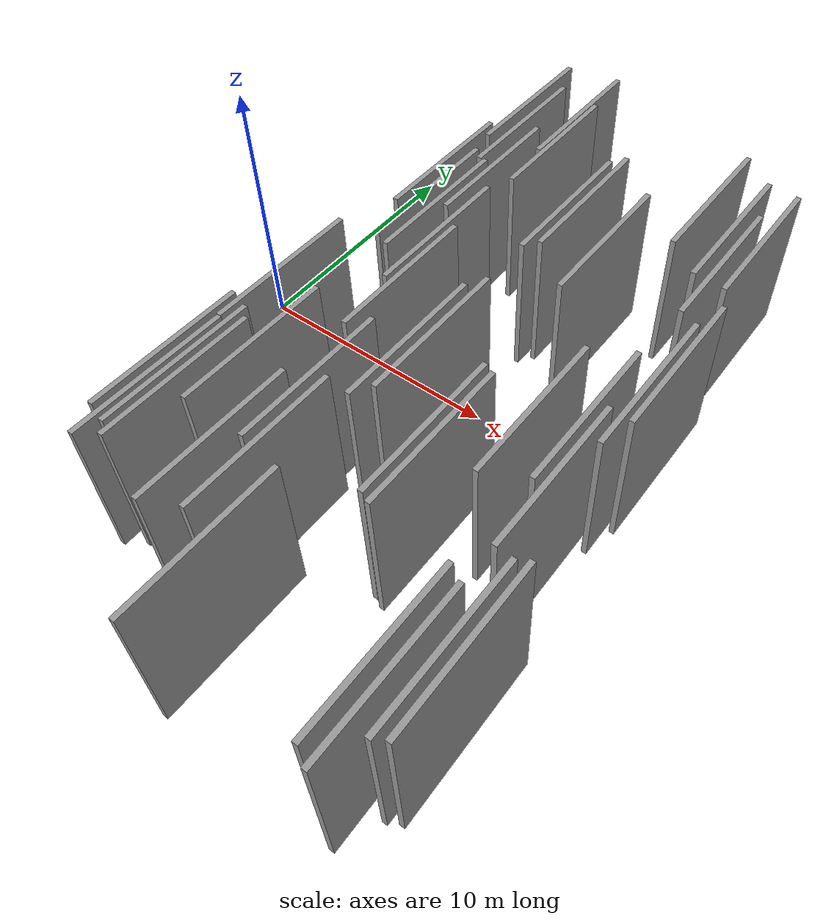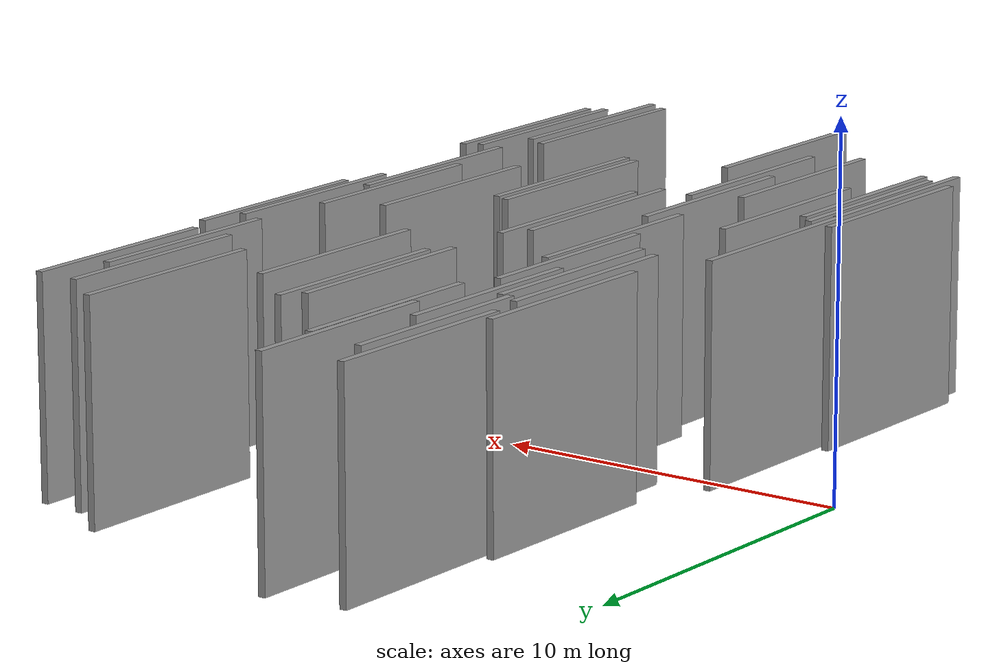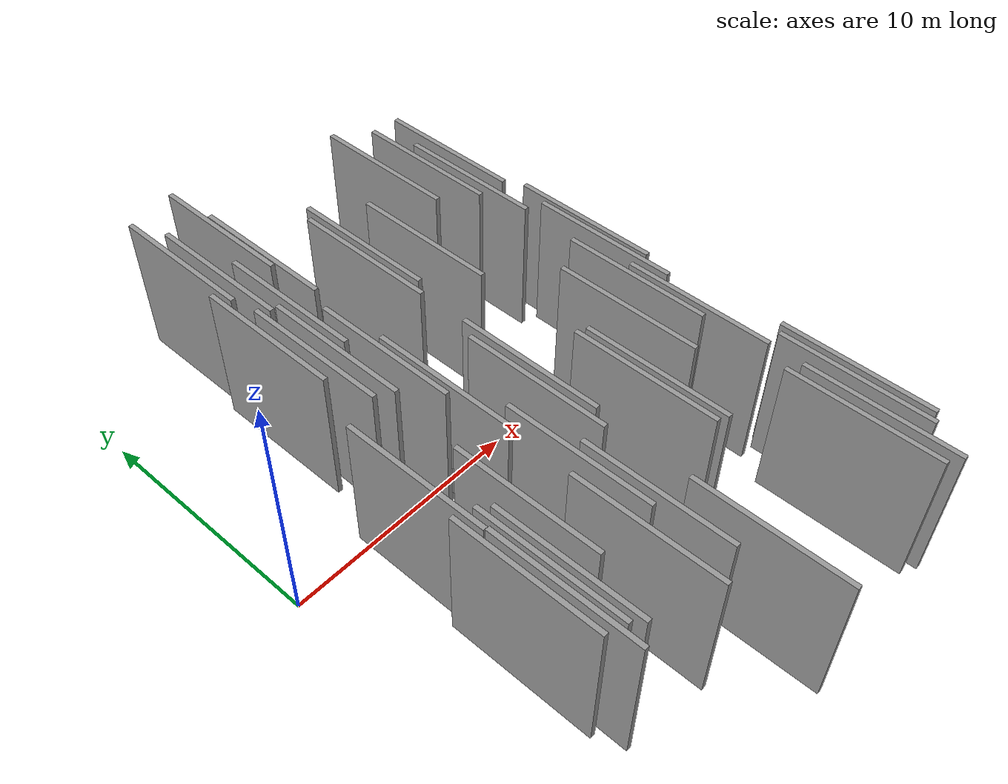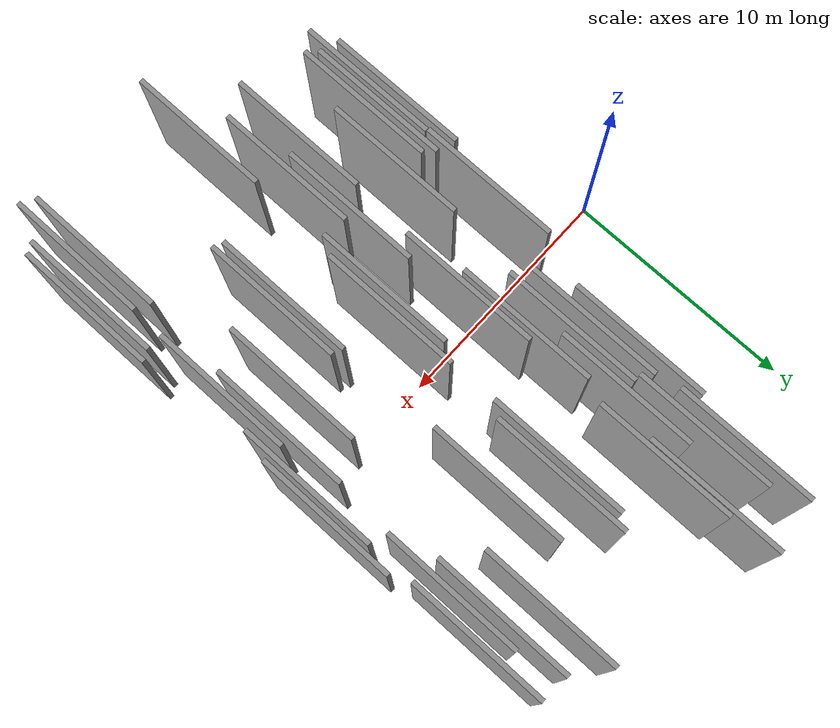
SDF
<sdf version="1.6">
 <world name="default">
  <scene>
   <sky><clouds><speed>12</speed></clouds></sky>
   <ambient>0.4 0.4 0.4 1</ambient>
   <background>0.7 0.7 0.7 1</background>
   <shadows>1</shadows>
  </scene>
  <gravity>0 0 -9.8066</gravity>
  <magnetic_field>6e-06 2.3e-05 -4.2e-05</magnetic_field>
  <physics default="0" name="default_physics" type="ode">
   <ode>
    <solver>
     <type>quick</type>
     <iters>10</iters>
     <sor>1.0</sor>
     <use_dynamic_moi_rescaling>0</use_dynamic_moi_rescaling>
    </solver>
    <constraints>
     <cfm>0</cfm>
     <erp>0.2</erp>
     <contact_max_correcting_vel>100</contact_max_correcting_vel>
     <contact_surface_layer>0.001</contact_surface_layer>
    </constraints>
   </ode>
   <max_step_size>0.004</max_step_size>
   <real_time_factor>1</real_time_factor>
   <real_time_update_rate>250</real_time_update_rate>
  </physics>
  <light name="sun" type="directional">
   <pose>0 0 10 0 0 0</pose>
   <diffuse>0.8 0.8 0.8 1</diffuse>
   <specular>0.2 0.2 0.2 1</specular>
   <attenuation>
    <range>1000</range>
    <constant>0.9</constant>
    <linear>0.01</linear>
    <quadratic>0.001</quadratic>
   </attenuation>
   <direction>-0.5 0.1 -0.9</direction>
  </light>
  <model name="grey_wall_1">
   <static>1</static>
   <pose>12.1451 -5.1813 0.0 0.000000 0.000000 1.570796</pose>
   <link name="link">
    <pose>0 0 3.00 0 0 0</pose>
    <collision name="collision"><geometry><box><size>6.00 0.2 6.00</size></box></geometry></collision>
    <visual name="visual">
     <cast_shadows>0</cast_shadows>
     <geometry><box><size>6.00 0.2 6.00</size></box></geometry>
     <material>
      <script>
       <uri>model://grey_wall/materials/scripts</uri>
       <uri>model://grey_wall/materials/textures</uri>
       <name>vrc/grey_wall</name>
      </script>
     </material>
    </visual>
   </link>
  </model>
  <model name="grey_wall_2">
   <static>1</static>
   <pose>15.1413 -11.2766 0.0 0.000000 0.000000 1.570796</pose>
   <link name="link">
    <pose>0 0 3.00 0 0 0</pose>
    <collision name="collision"><geometry><box><size>6.00 0.2 6.00</size></box></geometry></collision>
    <visual name="visual">
     <cast_shadows>0</cast_shadows>
     <geometry><box><size>6.00 0.2 6.00</size></box></geometry>
     <material>
      <script>
       <uri>model://grey_wall/materials/scripts</uri>
       <uri>model://grey_wall/materials/textures</uri>
       <name>vrc/grey_wall</name>
      </script>
     </material>
    </visual>
   </link>
  </model>
  <model name="grey_wall_3">
   <static>1</static>
   <pose>13.6531 9.5082 0.0 0.000000 0.000000 1.570796</pose>
   <link name="link">
    <pose>0 0 3.00 0 0 0</pose>
    <collision name="collision"><geometry><box><size>6.00 0.2 6.00</size></box></geometry></collision>
    <visual name="visual">
     <cast_shadows>0</cast_shadows>
     <geometry><box><size>6.00 0.2 6.00</size></box></geometry>
     <material>
      <script>
       <uri>model://grey_wall/materials/scripts</uri>
       <uri>model://grey_wall/materials/textures</uri>
       <name>vrc/grey_wall</name>
      </script>
     </material>
    </visual>
   </link>
  </model>
  <model name="grey_wall_4">
   <static>1</static>
   <pose>11.6642 5.2979 0.0 0.000000 0.000000 1.570796</pose>
   <link name="link">
    <pose>0 0 3.00 0 0 0</pose>
    <collision name="collision"><geometry><box><size>6.00 0.2 6.00</size></box></geometry></collision>
    <visual name="visual">
     <cast_shadows>0</cast_shadows>
     <geometry><box><size>6.00 0.2 6.00</size></box></geometry>
     <material>
      <script>
       <uri>model://grey_wall/materials/scripts</uri>
       <uri>model://grey_wall/materials/textures</uri>
       <name>vrc/grey_wall</name>
      </script>
     </material>
    </visual>
   </link>
  </model>
  <model name="grey_wall_5">
   <static>1</static>
   <pose>9.4939 6.2133 0.0 0.000000 0.000000 1.570796</pose>
   <link name="link">
    <pose>0 0 3.00 0 0 0</pose>
    <collision name="collision"><geometry><box><size>6.00 0.2 6.00</size></box></geometry></collision>
    <visual name="visual">
     <cast_shadows>0</cast_shadows>
     <geometry><box><size>6.00 0.2 6.00</size></box></geometry>
     <material>
      <script>
       <uri>model://grey_wall/materials/scripts</uri>
       <uri>model://grey_wall/materials/textures</uri>
       <name>vrc/grey_wall</name>
      </script>
     </material>
    </visual>
   </link>
  </model>
  <model name="grey_wall_6">
   <static>1</static>
   <pose>3.1000 -7.3563 0.0 0.000000 0.000000 1.570796</pose>
   <link name="link">
    <pose>0 0 3.00 0 0 0</pose>
    <collision name="collision"><geometry><box><size>6.00 0.2 6.00</size></box></geometry></collision>
    <visual name="visual">
     <cast_shadows>0</cast_shadows>
     <geometry><box><size>6.00 0.2 6.00</size></box></geometry>
     <material>
      <script>
       <uri>model://grey_wall/materials/scripts</uri>
       <uri>model://grey_wall/materials/textures</uri>
       <name>vrc/grey_wall</name>
      </script>
     </material>
    </visual>
   </link>
  </model>
  <model name="grey_wall_7">
   <static>1</static>
   <pose>4.2803 -7.9696 0.0 0.000000 0.000000 1.570796</pose>
   <link name="link">
    <pose>0 0 3.00 0 0 0</pose>
    <collision name="collision"><geometry><box><size>6.00 0.2 6.00</size></box></geometry></collision>
    <visual name="visual">
     <cast_shadows>0</cast_shadows>
     <geometry><box><size>6.00 0.2 6.00</size></box></geometry>
     <material>
      <script>
       <uri>model://grey_wall/materials/scripts</uri>
       <uri>model://grey_wall/materials/textures</uri>
       <name>vrc/grey_wall</name>
      </script>
     </material>
    </visual>
   </link>
  </model>
  <model name="grey_wall_8">
   <static>1</static>
   <pose>16.1915 8.3864 0.0 0.000000 0.000000 1.570796</pose>
   <link name="link">
    <pose>0 0 3.00 0 0 0</pose>
    <collision name="collision"><geometry><box><size>6.00 0.2 6.00</size></box></geometry></collision>
    <visual name="visual">
     <cast_shadows>0</cast_shadows>
     <geometry><box><size>6.00 0.2 6.00</size></box></geometry>
     <material>
      <script>
       <uri>model://grey_wall/materials/scripts</uri>
       <uri>model://grey_wall/materials/textures</uri>
       <name>vrc/grey_wall</name>
      </script>
     </material>
    </visual>
   </link>
  </model>
  <model name="grey_wall_9">
   <static>1</static>
   <pose>4.9220 3.8574 0.0 0.000000 0.000000 1.570796</pose>
   <link name="link">
    <pose>0 0 3.00 0 0 0</pose>
    <collision name="collision"><geometry><box><size>6.00 0.2 6.00</size></box></geometry></collision>
    <visual name="visual">
     <cast_shadows>0</cast_shadows>
     <geometry><box><size>6.00 0.2 6.00</size></box></geometry>
     <material>
      <script>
       <uri>model://grey_wall/materials/scripts</uri>
       <uri>model://grey_wall/materials/textures</uri>
       <name>vrc/grey_wall</name>
      </script>
     </material>
    </visual>
   </link>
  </model>
  <model name="grey_wall_10">
   <static>1</static>
   <pose>3.5389 -8.4441 0.0 0.000000 0.000000 1.570796</pose>
   <link name="link">
    <pose>0 0 3.00 0 0 0</pose>
    <collision name="collision"><geometry><box><size>6.00 0.2 6.00</size></box></geometry></collision>
    <visual name="visual">
     <cast_shadows>0</cast_shadows>
     <geometry><box><size>6.00 0.2 6.00</size></box></geometry>
     <material>
      <script>
       <uri>model://grey_wall/materials/scripts</uri>
       <uri>model://grey_wall/materials/textures</uri>
       <name>vrc/grey_wall</name>
      </script>
     </material>
    </visual>
   </link>
  </model>
  <model name="grey_wall_11">
   <static>1</static>
   <pose>5.5867 3.4887 0.0 0.000000 0.000000 1.570796</pose>
   <link name="link">
    <pose>0 0 3.00 0 0 0</pose>
    <collision name="collision"><geometry><box><size>6.00 0.2 6.00</size></box></geometry></collision>
    <visual name="visual">
     <cast_shadows>0</cast_shadows>
     <geometry><box><size>6.00 0.2 6.00</size></box></geometry>
     <material>
      <script>
       <uri>model://grey_wall/materials/scripts</uri>
       <uri>model://grey_wall/materials/textures</uri>
       <name>vrc/grey_wall</name>
      </script>
     </material>
    </visual>
   </link>
  </model>
  <model name="grey_wall_12">
   <static>1</static>
   <pose>14.9917 8.4810 0.0 0.000000 0.000000 1.570796</pose>
   <link name="link">
    <pose>0 0 3.00 0 0 0</pose>
    <collision name="collision"><geometry><box><size>6.00 0.2 6.00</size></box></geometry></collision>
    <visual name="visual">
     <cast_shadows>0</cast_shadows>
     <geometry><box><size>6.00 0.2 6.00</size></box></geometry>
     <material>
      <script>
       <uri>model://grey_wall/materials/scripts</uri>
       <uri>model://grey_wall/materials/textures</uri>
       <name>vrc/grey_wall</name>
      </script>
     </material>
    </visual>
   </link>
  </model>
  <model name="grey_wall_13">
   <static>1</static>
   <pose>9.9165 6.7411 0.0 0.000000 0.000000 1.570796</pose>
   <link name="link">
    <pose>0 0 3.00 0 0 0</pose>
    <collision name="collision"><geometry><box><size>6.00 0.2 6.00</size></box></geometry></collision>
    <visual name="visual">
     <cast_shadows>0</cast_shadows>
     <geometry><box><size>6.00 0.2 6.00</size></box></geometry>
     <material>
      <script>
       <uri>model://grey_wall/materials/scripts</uri>
       <uri>model://grey_wall/materials/textures</uri>
       <name>vrc/grey_wall</name>
      </script>
     </material>
    </visual>
   </link>
  </model>
  <model name="grey_wall_14">
   <static>1</static>
   <pose>6.8452 11.2171 0.0 0.000000 0.000000 1.570796</pose>
   <link name="link">
    <pose>0 0 3.00 0 0 0</pose>
    <collision name="collision"><geometry><box><size>6.00 0.2 6.00</size></box></geometry></collision>
    <visual name="visual">
     <cast_shadows>0</cast_shadows>
     <geometry><box><size>6.00 0.2 6.00</size></box></geometry>
     <material>
      <script>
       <uri>model://grey_wall/materials/scripts</uri>
       <uri>model://grey_wall/materials/textures</uri>
       <name>vrc/grey_wall</name>
      </script>
     </material>
    </visual>
   </link>
  </model>
  <model name="grey_wall_15">
   <static>1</static>
   <pose>16.8674 -9.9732 0.0 0.000000 0.000000 1.570796</pose>
   <link name="link">
    <pose>0 0 3.00 0 0 0</pose>
    <collision name="collision"><geometry><box><size>6.00 0.2 6.00</size></box></geometry></collision>
    <visual name="visual">
     <cast_shadows>0</cast_shadows>
     <geometry><box><size>6.00 0.2 6.00</size></box></geometry>
     <material>
      <script>
       <uri>model://grey_wall/materials/scripts</uri>
       <uri>model://grey_wall/materials/textures</uri>
       <name>vrc/grey_wall</name>
      </script>
     </material>
    </visual>
   </link>
  </model>
  <model name="grey_wall_16">
   <static>1</static>
   <pose>7.6171 -5.5608 0.0 0.000000 0.000000 1.570796</pose>
   <link name="link">
    <pose>0 0 3.00 0 0 0</pose>
    <collision name="collision"><geometry><box><size>6.00 0.2 6.00</size></box></geometry></collision>
    <visual name="visual">
     <cast_shadows>0</cast_shadows>
     <geometry><box><size>6.00 0.2 6.00</size></box></geometry>
     <material>
      <script>
       <uri>model://grey_wall/materials/scripts</uri>
       <uri>model://grey_wall/materials/textures</uri>
       <name>vrc/grey_wall</name>
      </script>
     </material>
    </visual>
   </link>
  </model>
  <model name="grey_wall_17">
   <static>1</static>
   <pose>6.0229 6.4085 0.0 0.000000 0.000000 1.570796</pose>
   <link name="link">
    <pose>0 0 3.00 0 0 0</pose>
    <collision name="collision"><geometry><box><size>6.00 0.2 6.00</size></box></geometry></collision>
    <visual name="visual">
     <cast_shadows>0</cast_shadows>
     <geometry><box><size>6.00 0.2 6.00</size></box></geometry>
     <material>
      <script>
       <uri>model://grey_wall/materials/scripts</uri>
       <uri>model://grey_wall/materials/textures</uri>
       <name>vrc/grey_wall</name>
      </script>
     </material>
    </visual>
   </link>
  </model>
  <model name="grey_wall_18">
   <static>1</static>
   <pose>8.1108 -8.3036 0.0 0.000000 0.000000 1.570796</pose>
   <link name="link">
    <pose>0 0 3.00 0 0 0</pose>
    <collision name="collision"><geometry><box><size>6.00 0.2 6.00</size></box></geometry></collision>
    <visual name="visual">
     <cast_shadows>0</cast_shadows>
     <geometry><box><size>6.00 0.2 6.00</size></box></geometry>
     <material>
      <script>
       <uri>model://grey_wall/materials/scripts</uri>
       <uri>model://grey_wall/materials/textures</uri>
       <name>vrc/grey_wall</name>
      </script>
     </material>
    </visual>
   </link>
  </model>
  <model name="grey_wall_19">
   <static>1</static>
   <pose>5.3103 9.4407 0.0 0.000000 0.000000 1.570796</pose>
   <link name="link">
    <pose>0 0 3.00 0 0 0</pose>
    <collision name="collision"><geometry><box><size>6.00 0.2 6.00</size></box></geometry></collision>
    <visual name="visual">
     <cast_shadows>0</cast_shadows>
     <geometry><box><size>6.00 0.2 6.00</size></box></geometry>
     <material>
      <script>
       <uri>model://grey_wall/materials/scripts</uri>
       <uri>model://grey_wall/materials/textures</uri>
       <name>vrc/grey_wall</name>
      </script>
     </material>
    </visual>
   </link>
  </model>
  <model name="grey_wall_20">
   <static>1</static>
   <pose>16.2411 0.4192 0.0 0.000000 0.000000 1.570796</pose>
   <link name="link">
    <pose>0 0 3.00 0 0 0</pose>
    <collision name="collision"><geometry><box><size>6.00 0.2 6.00</size></box></geometry></collision>
    <visual name="visual">
     <cast_shadows>0</cast_shadows>
     <geometry><box><size>6.00 0.2 6.00</size></box></geometry>
     <material>
      <script>
       <uri>model://grey_wall/materials/scripts</uri>
       <uri>model://grey_wall/materials/textures</uri>
       <name>vrc/grey_wall</name>
      </script>
     </material>
    </visual>
   </link>
  </model>
  <model name="grey_wall_21">
   <static>1</static>
   <pose>4.7092 10.8443 0.0 0.000000 0.000000 1.570796</pose>
   <link name="link">
    <pose>0 0 3.00 0 0 0</pose>
    <collision name="collision"><geometry><box><size>6.00 0.2 6.00</size></box></geometry></collision>
    <visual name="visual">
     <cast_shadows>0</cast_shadows>
     <geometry><box><size>6.00 0.2 6.00</size></box></geometry>
     <material>
      <script>
       <uri>model://grey_wall/materials/scripts</uri>
       <uri>model://grey_wall/materials/textures</uri>
       <name>vrc/grey_wall</name>
      </script>
     </material>
    </visual>
   </link>
  </model>
  <model name="grey_wall_22">
   <static>1</static>
   <pose>15.5327 6.6128 0.0 0.000000 0.000000 1.570796</pose>
   <link name="link">
    <pose>0 0 3.00 0 0 0</pose>
    <collision name="collision"><geometry><box><size>6.00 0.2 6.00</size></box></geometry></collision>
    <visual name="visual">
     <cast_shadows>0</cast_shadows>
     <geometry><box><size>6.00 0.2 6.00</size></box></geometry>
     <material>
      <script>
       <uri>model://grey_wall/materials/scripts</uri>
       <uri>model://grey_wall/materials/textures</uri>
       <name>vrc/grey_wall</name>
      </script>
     </material>
    </visual>
   </link>
  </model>
  <model name="grey_wall_23">
   <static>1</static>
   <pose>15.7235 -11.5997 0.0 0.000000 0.000000 1.570796</pose>
   <link name="link">
    <pose>0 0 3.00 0 0 0</pose>
    <collision name="collision"><geometry><box><size>6.00 0.2 6.00</size></box></geometry></collision>
    <visual name="visual">
     <cast_shadows>0</cast_shadows>
     <geometry><box><size>6.00 0.2 6.00</size></box></geometry>
     <material>
      <script>
       <uri>model://grey_wall/materials/scripts</uri>
       <uri>model://grey_wall/materials/textures</uri>
       <name>vrc/grey_wall</name>
      </script>
     </material>
    </visual>
   </link>
  </model>
  <model name="grey_wall_24">
   <static>1</static>
   <pose>16.4300 -10.1939 0.0 0.000000 0.000000 1.570796</pose>
   <link name="link">
    <pose>0 0 3.00 0 0 0</pose>
    <collision name="collision"><geometry><box><size>6.00 0.2 6.00</size></box></geometry></collision>
    <visual name="visual">
     <cast_shadows>0</cast_shadows>
     <geometry><box><size>6.00 0.2 6.00</size></box></geometry>
     <material>
      <script>
       <uri>model://grey_wall/materials/scripts</uri>
       <uri>model://grey_wall/materials/textures</uri>
       <name>vrc/grey_wall</name>
      </script>
     </material>
    </visual>
   </link>
  </model>
  <model name="grey_wall_25">
   <static>1</static>
   <pose>6.9919 -0.2852 0.0 0.000000 0.000000 1.570796</pose>
   <link name="link">
    <pose>0 0 3.00 0 0 0</pose>
    <collision name="collision"><geometry><box><size>6.00 0.2 6.00</size></box></geometry></collision>
    <visual name="visual">
     <cast_shadows>0</cast_shadows>
     <geometry><box><size>6.00 0.2 6.00</size></box></geometry>
     <material>
      <script>
       <uri>model://grey_wall/materials/scripts</uri>
       <uri>model://grey_wall/materials/textures</uri>
       <name>vrc/grey_wall</name>
      </script>
     </material>
    </visual>
   </link>
  </model>
  <model name="grey_wall_26">
   <static>1</static>
   <pose>16.5880 1.6347 0.0 0.000000 0.000000 1.570796</pose>
   <link name="link">
    <pose>0 0 3.00 0 0 0</pose>
    <collision name="collision"><geometry><box><size>6.00 0.2 6.00</size></box></geometry></collision>
    <visual name="visual">
     <cast_shadows>0</cast_shadows>
     <geometry><box><size>6.00 0.2 6.00</size></box></geometry>
     <material>
      <script>
       <uri>model://grey_wall/materials/scripts</uri>
       <uri>model://grey_wall/materials/textures</uri>
       <name>vrc/grey_wall</name>
      </script>
     </material>
    </visual>
   </link>
  </model>
  <model name="grey_wall_27">
   <static>1</static>
   <pose>6.8356 -8.9020 0.0 0.000000 0.000000 1.570796</pose>
   <link name="link">
    <pose>0 0 3.00 0 0 0</pose>
    <collision name="collision"><geometry><box><size>6.00 0.2 6.00</size></box></geometry></collision>
    <visual name="visual">
     <cast_shadows>0</cast_shadows>
     <geometry><box><size>6.00 0.2 6.00</size></box></geometry>
     <material>
      <script>
       <uri>model://grey_wall/materials/scripts</uri>
       <uri>model://grey_wall/materials/textures</uri>
       <name>vrc/grey_wall</name>
      </script>
     </material>
    </visual>
   </link>
  </model>
  <model name="grey_wall_28">
   <static>1</static>
   <pose>5.1727 -5.5485 0.0 0.000000 0.000000 1.570796</pose>
   <link name="link">
    <pose>0 0 3.00 0 0 0</pose>
    <collision name="collision"><geometry><box><size>6.00 0.2 6.00</size></box></geometry></collision>
    <visual name="visual">
     <cast_shadows>0</cast_shadows>
     <geometry><box><size>6.00 0.2 6.00</size></box></geometry>
     <material>
      <script>
       <uri>model://grey_wall/materials/scripts</uri>
       <uri>model://grey_wall/materials/textures</uri>
       <name>vrc/grey_wall</name>
      </script>
     </material>
    </visual>
   </link>
  </model>
  <model name="grey_wall_29">
   <static>1</static>
   <pose>9.0745 -2.4983 0.0 0.000000 0.000000 1.570796</pose>
   <link name="link">
    <pose>0 0 3.00 0 0 0</pose>
    <collision name="collision"><geometry><box><size>6.00 0.2 6.00</size></box></geometry></collision>
    <visual name="visual">
     <cast_shadows>0</cast_shadows>
     <geometry><box><size>6.00 0.2 6.00</size></box></geometry>
     <material>
      <script>
       <uri>model://grey_wall/materials/scripts</uri>
       <uri>model://grey_wall/materials/textures</uri>
       <name>vrc/grey_wall</name>
      </script>
     </material>
    </visual>
   </link>
  </model>
  <model name="grey_wall_30">
   <static>1</static>
   <pose>9.2553 -11.7114 0.0 0.000000 0.000000 1.570796</pose>
   <link name="link">
    <pose>0 0 3.00 0 0 0</pose>
    <collision name="collision"><geometry><box><size>6.00 0.2 6.00</size></box></geometry></collision>
    <visual name="visual">
     <cast_shadows>0</cast_shadows>
     <geometry><box><size>6.00 0.2 6.00</size></box></geometry>
     <material>
      <script>
       <uri>model://grey_wall/materials/scripts</uri>
       <uri>model://grey_wall/materials/textures</uri>
       <name>vrc/grey_wall</name>
      </script>
     </material>
    </visual>
   </link>
  </model>
  <model name="grey_wall_31">
   <static>1</static>
   <pose>3.4798 -2.4295 0.0 0.000000 0.000000 1.570796</pose>
   <link name="link">
    <pose>0 0 3.00 0 0 0</pose>
    <collision name="collision"><geometry><box><size>6.00 0.2 6.00</size></box></geometry></collision>
    <visual name="visual">
     <cast_shadows>0</cast_shadows>
     <geometry><box><size>6.00 0.2 6.00</size></box></geometry>
     <material>
      <script>
       <uri>model://grey_wall/materials/scripts</uri>
       <uri>model://grey_wall/materials/textures</uri>
       <name>vrc/grey_wall</name>
      </script>
     </material>
    </visual>
   </link>
  </model>
  <model name="grey_wall_32">
   <static>1</static>
   <pose>15.7734 -4.2202 0.0 0.000000 0.000000 1.570796</pose>
   <link name="link">
    <pose>0 0 3.00 0 0 0</pose>
    <collision name="collision"><geometry><box><size>6.00 0.2 6.00</size></box></geometry></collision>
    <visual name="visual">
     <cast_shadows>0</cast_shadows>
     <geometry><box><size>6.00 0.2 6.00</size></box></geometry>
     <material>
      <script>
       <uri>model://grey_wall/materials/scripts</uri>
       <uri>model://grey_wall/materials/textures</uri>
       <name>vrc/grey_wall</name>
      </script>
     </material>
    </visual>
   </link>
  </model>
  <model name="grey_wall_33">
   <static>1</static>
   <pose>7.0672 9.0954 0.0 0.000000 0.000000 1.570796</pose>
   <link name="link">
    <pose>0 0 3.00 0 0 0</pose>
    <collision name="collision"><geometry><box><size>6.00 0.2 6.00</size></box></geometry></collision>
    <visual name="visual">
     <cast_shadows>0</cast_shadows>
     <geometry><box><size>6.00 0.2 6.00</size></box></geometry>
     <material>
      <script>
       <uri>model://grey_wall/materials/scripts</uri>
       <uri>model://grey_wall/materials/textures</uri>
       <name>vrc/grey_wall</name>
      </script>
     </material>
    </visual>
   </link>
  </model>
  <model name="grey_wall_34">
   <static>1</static>
   <pose>13.9080 -2.5341 0.0 0.000000 0.000000 1.570796</pose>
   <link name="link">
    <pose>0 0 3.00 0 0 0</pose>
    <collision name="collision"><geometry><box><size>6.00 0.2 6.00</size></box></geometry></collision>
    <visual name="visual">
     <cast_shadows>0</cast_shadows>
     <geometry><box><size>6.00 0.2 6.00</size></box></geometry>
     <material>
      <script>
       <uri>model://grey_wall/materials/scripts</uri>
       <uri>model://grey_wall/materials/textures</uri>
       <name>vrc/grey_wall</name>
      </script>
     </material>
    </visual>
   </link>
  </model>
  <model name="grey_wall_35">
   <static>1</static>
   <pose>15.3526 -1.7840 0.0 0.000000 0.000000 1.570796</pose>
   <link name="link">
    <pose>0 0 3.00 0 0 0</pose>
    <collision name="collision"><geometry><box><size>6.00 0.2 6.00</size></box></geometry></collision>
    <visual name="visual">
     <cast_shadows>0</cast_shadows>
     <geometry><box><size>6.00 0.2 6.00</size></box></geometry>
     <material>
      <script>
       <uri>model://grey_wall/materials/scripts</uri>
       <uri>model://grey_wall/materials/textures</uri>
       <name>vrc/grey_wall</name>
      </script>
     </material>
    </visual>
   </link>
  </model>
  <model name="grey_wall_36">
   <static>1</static>
   <pose>9.5293 -1.8017 0.0 0.000000 0.000000 1.570796</pose>
   <link name="link">
    <pose>0 0 3.00 0 0 0</pose>
    <collision name="collision"><geometry><box><size>6.00 0.2 6.00</size></box></geometry></collision>
    <visual name="visual">
     <cast_shadows>0</cast_shadows>
     <geometry><box><size>6.00 0.2 6.00</size></box></geometry>
     <material>
      <script>
       <uri>model://grey_wall/materials/scripts</uri>
       <uri>model://grey_wall/materials/textures</uri>
       <name>vrc/grey_wall</name>
      </script>
     </material>
    </visual>
   </link>
  </model>
  <model name="grey_wall_37">
   <static>1</static>
   <pose>4.3381 5.6030 0.0 0.000000 0.000000 1.570796</pose>
   <link name="link">
    <pose>0 0 3.00 0 0 0</pose>
    <collision name="collision"><geometry><box><size>6.00 0.2 6.00</size></box></geometry></collision>
    <visual name="visual">
     <cast_shadows>0</cast_shadows>
     <geometry><box><size>6.00 0.2 6.00</size></box></geometry>
     <material>
      <script>
       <uri>model://grey_wall/materials/scripts</uri>
       <uri>model://grey_wall/materials/textures</uri>
       <name>vrc/grey_wall</name>
      </script>
     </material>
    </visual>
   </link>
  </model>
  <model name="grey_wall_38">
   <static>1</static>
   <pose>6.6352 2.2000 0.0 0.000000 0.000000 1.570796</pose>
   <link name="link">
    <pose>0 0 3.00 0 0 0</pose>
    <collision name="collision"><geometry><box><size>6.00 0.2 6.00</size></box></geometry></collision>
    <visual name="visual">
     <cast_shadows>0</cast_shadows>
     <geometry><box><size>6.00 0.2 6.00</size></box></geometry>
     <material>
      <script>
       <uri>model://grey_wall/materials/scripts</uri>
       <uri>model://grey_wall/materials/textures</uri>
       <name>vrc/grey_wall</name>
      </script>
     </material>
    </visual>
   </link>
  </model>
  <model name="grey_wall_39">
   <static>1</static>
   <pose>3.8821 -7.6021 0.0 0.000000 0.000000 1.570796</pose>
   <link name="link">
    <pose>0 0 3.00 0 0 0</pose>
    <collision name="collision"><geometry><box><size>6.00 0.2 6.00</size></box></geometry></collision>
    <visual name="visual">
     <cast_shadows>0</cast_shadows>
     <geometry><box><size>6.00 0.2 6.00</size></box></geometry>
     <material>
      <script>
       <uri>model://grey_wall/materials/scripts</uri>
       <uri>model://grey_wall/materials/textures</uri>
       <name>vrc/grey_wall</name>
      </script>
     </material>
    </visual>
   </link>
  </model>
  <model name="grey_wall_40">
   <static>1</static>
   <pose>11.7394 -5.0063 0.0 0.000000 0.000000 1.570796</pose>
   <link name="link">
    <pose>0 0 3.00 0 0 0</pose>
    <collision name="collision"><geometry><box><size>6.00 0.2 6.00</size></box></geometry></collision>
    <visual name="visual">
     <cast_shadows>0</cast_shadows>
     <geometry><box><size>6.00 0.2 6.00</size></box></geometry>
     <material>
      <script>
       <uri>model://grey_wall/materials/scripts</uri>
       <uri>model://grey_wall/materials/textures</uri>
       <name>vrc/grey_wall</name>
      </script>
     </material>
    </visual>
   </link>
  </model>
 </world>
</sdf>
